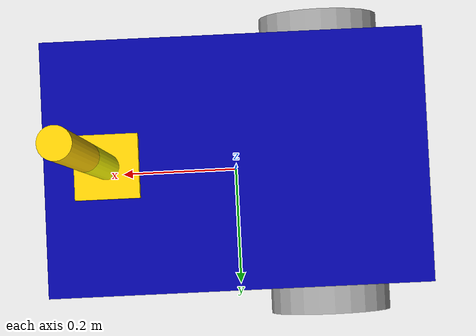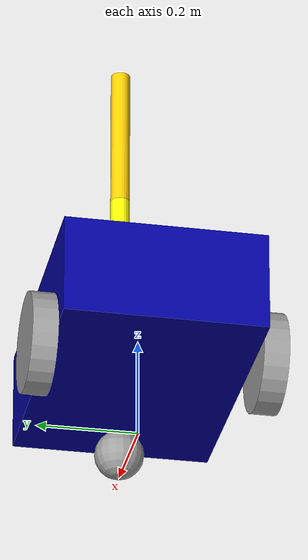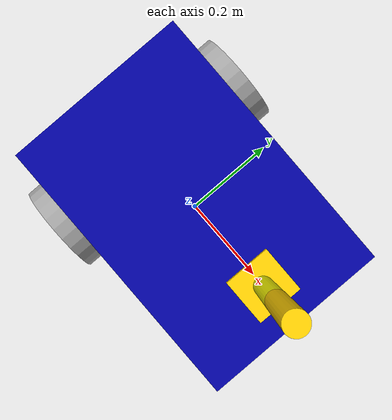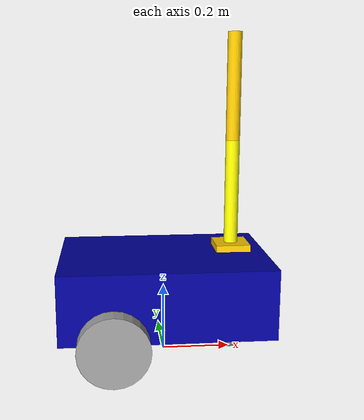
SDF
<sdf version='1.9'>
  <model name='my_robot'>
    <link name='base_footprint'>
      <inertial>
        <pose>0.03778688524590164 0 0.1975409836065574 0 0 0</pose>
        <mass>6.0999999999999996</mass>
        <inertia>
          <ixx>0.1027839480874317</ixx>
          <ixy>0</ixy>
          <ixz>0.002433196721311467</ixz>
          <iyy>0.22662740437158471</iyy>
          <iyz>0</iyz>
          <izz>0.25867678961748641</izz>
        </inertia>
      </inertial>
      <collision name='base_footprint_fixed_joint_lump__base_link_collision'>
        <pose>0 0 0.2 0 0 0</pose>
        <geometry>
          <box>
            <size>0.6 0.4 0.2</size>
          </box>
        </geometry>
      </collision>
      <collision name='base_footprint_fixed_joint_lump__arm_base_link_collision_1'>
        <pose>0.2 0 0.3200000000000001 0 0 0</pose>
        <geometry>
          <box>
            <size>0.1 0.1 0.02</size>
          </box>
        </geometry>
      </collision>
      <collision name='base_footprint_fixed_joint_lump__camera_link_collision_2'>
        <pose>0.305 0 0.2 0 0 0</pose>
        <geometry>
          <box>
            <size>0.01 0.1 0.05</size>
          </box>
        </geometry>
        <surface>
          <contact>
            <ode/>
          </contact>
          <friction>
            <ode/>
          </friction>
        </surface>
      </collision>
      <collision name='base_footprint_fixed_joint_lump__sphere_collision_3'>
        <pose>0.2 0 0.05 0 0 0</pose>
        <geometry>
          <sphere>
            <radius>0.050000000000000003</radius>
          </sphere>
        </geometry>
        <surface>
          <contact>
            <ode/>
          </contact>
          <friction>
            <ode>
              <mu>0.10000000000000001</mu>
              <mu2>0.10000000000000001</mu2>
            </ode>
          </friction>
        </surface>
      </collision>
      <visual name='base_footprint_fixed_joint_lump__base_link_visual'>
        <pose>0 0 0.2 0 0 0</pose>
        <geometry>
          <box>
            <size>0.6 0.4 0.2</size>
          </box>
        </geometry>
        <material>
          <diffuse>0 0 0.625 1</diffuse>
          <ambient>0 0 0.625 1</ambient>
        </material>
      </visual>
      <visual name='base_footprint_fixed_joint_lump__arm_base_link_visual_1'>
        <pose>0.2 0 0.3200000000000001 0 0 0</pose>
        <geometry>
          <box>
            <size>0.1 0.1 0.02</size>
          </box>
        </geometry>
        <material>
          <diffuse>1 0.80875 0 1</diffuse>
          <ambient>1 0.80875 0 1</ambient>
        </material>
      </visual>
      <visual name='base_footprint_fixed_joint_lump__camera_link_visual_2'>
        <pose>0.305 0 0.2 0 0 0</pose>
        <geometry>
          <box>
            <size>0.01 0.1 0.05</size>
          </box>
        </geometry>
        <material>
          <diffuse>0.625 0.625 0.625 1</diffuse>
          <ambient>0.625 0.625 0.625 1</ambient>
        </material>
      </visual>
      <visual name='base_footprint_fixed_joint_lump__sphere_visual_3'>
        <pose>0.2 0 0.05 0 0 0</pose>
        <geometry>
          <sphere>
            <radius>0.050000000000000003</radius>
          </sphere>
        </geometry>
        <material>
          <diffuse>0.625 0.625 0.625 1</diffuse>
          <ambient>0.625 0.625 0.625 1</ambient>
        </material>
      </visual>
      <sensor name='camera' type='camera'>
        <camera>
          <image>
            <width>640</width>
            <height>480</height>
            <format>R8G8B8</format>
          </image>
          <clip>
            <near>0.10000000000000001</near>
            <far>15</far>
          </clip>
          <noise>
            <type>gaussian</type>
            <mean>0</mean>
            <stddev>0.0070000000000000001</stddev>
          </noise>
          <optical_frame_id>camera_link_optical</optical_frame_id>
          <camera_info_topic>camera/camera_info</camera_info_topic>
          <horisontal_fov>1.3962634</horisontal_fov>
          <horizontal_fov>1.0469999999999999</horizontal_fov>
        </camera>
        <always_on>true</always_on>
        <update_rate>20</update_rate>
        <visualize>true</visualize>
        <topic>camera/image_raw</topic>
        <pose>0.305 0 0.2 0 -0 0</pose>
      </sensor>
    </link>
    <joint name='arm_base_forearm_joint' type='revolute'>
      <pose relative_to='base_footprint'>0.2 0 0.33 0 0 0</pose>
      <parent>base_footprint</parent>
      <child>forearm_link</child>
      <axis>
        <xyz>0 1 0</xyz>
        <limit>
          <lower>0</lower>
          <upper>1.570796326794897</upper>
          <effort>100</effort>
          <velocity>100</velocity>
        </limit>
        <dynamics>
          <spring_reference>0</spring_reference>
          <spring_stiffness>0</spring_stiffness>
        </dynamics>
      </axis>
    </joint>
    <link name='forearm_link'>
      <pose relative_to='arm_base_forearm_joint'>0 0 0 0 0 0</pose>
      <inertial>
        <pose>0 0 0.15 0 0 0</pose>
        <mass>0.29999999999999999</mass>
        <inertia>
          <ixx>0.0022799999999999999</ixx>
          <ixy>0</ixy>
          <ixz>0</ixz>
          <iyy>0.0022799999999999999</iyy>
          <iyz>0</iyz>
          <izz>6.0000000000000002e-05</izz>
        </inertia>
      </inertial>
      <collision name='forearm_link_collision'>
        <pose>0 0 0.15 0 0 0</pose>
        <geometry>
          <cylinder>
            <length>0.29999999999999999</length>
            <radius>0.02</radius>
          </cylinder>
        </geometry>
      </collision>
      <visual name='forearm_link_visual'>
        <pose>0 0 0.15 0 0 0</pose>
        <geometry>
          <cylinder>
            <length>0.29999999999999999</length>
            <radius>0.02</radius>
          </cylinder>
        </geometry>
        <material>
          <diffuse>1 1 0 1</diffuse>
          <ambient>1 1 0 1</ambient>
        </material>
      </visual>
    </link>
    <joint name='forearm_hand_joint' type='revolute'>
      <pose relative_to='forearm_link'>0 0 0.3 0 0 0</pose>
      <parent>forearm_link</parent>
      <child>hand_link</child>
      <axis>
        <xyz>0 1 0</xyz>
        <limit>
          <lower>0</lower>
          <upper>1.570796326794897</upper>
          <effort>100</effort>
          <velocity>100</velocity>
        </limit>
        <dynamics>
          <spring_reference>0</spring_reference>
          <spring_stiffness>0</spring_stiffness>
        </dynamics>
      </axis>
    </joint>
    <link name='hand_link'>
      <pose relative_to='forearm_hand_joint'>0 0 0 0 0 0</pose>
      <inertial>
        <pose>0 0 0.15 0 0 0</pose>
        <mass>0.29999999999999999</mass>
        <inertia>
          <ixx>0.0022799999999999999</ixx>
          <ixy>0</ixy>
          <ixz>0</ixz>
          <iyy>0.0022799999999999999</iyy>
          <iyz>0</iyz>
          <izz>6.0000000000000002e-05</izz>
        </inertia>
      </inertial>
      <collision name='hand_link_collision'>
        <pose>0 0 0.15 0 0 0</pose>
        <geometry>
          <cylinder>
            <length>0.29999999999999999</length>
            <radius>0.02</radius>
          </cylinder>
        </geometry>
      </collision>
      <visual name='hand_link_visual'>
        <pose>0 0 0.15 0 0 0</pose>
        <geometry>
          <cylinder>
            <length>0.29999999999999999</length>
            <radius>0.02</radius>
          </cylinder>
        </geometry>
        <material>
          <diffuse>1 0.80875 0 1</diffuse>
          <ambient>1 0.80875 0 1</ambient>
        </material>
      </visual>
    </link>
    <joint name='base_left_wheel' type='revolute'>
      <pose relative_to='base_footprint'>-0.15 -0.225 0.1 0 0 0</pose>
      <parent>base_footprint</parent>
      <child>left_wheel</child>
      <axis>
        <xyz>0 1 0</xyz>
        <limit>
          <lower>-10000000000000000</lower>
          <upper>10000000000000000</upper>
        </limit>
        <dynamics>
          <spring_reference>0</spring_reference>
          <spring_stiffness>0</spring_stiffness>
        </dynamics>
      </axis>
    </joint>
    <link name='left_wheel'>
      <pose relative_to='base_left_wheel'>0 0 0 0 0 0</pose>
      <inertial>
        <pose>0 0 0 1.570796326794896 0 0</pose>
        <mass>1</mass>
        <inertia>
          <ixx>0.0027083333333333339</ixx>
          <ixy>0</ixy>
          <ixz>0</ixz>
          <iyy>0.0027083333333333339</iyy>
          <iyz>0</iyz>
          <izz>0.005000000000000001</izz>
        </inertia>
      </inertial>
      <collision name='left_wheel_collision'>
        <pose>0 0 0 0 0 0</pose>
        <geometry>
          <sphere>
            <radius>0.10000000000000001</radius>
          </sphere>
        </geometry>
      </collision>
      <visual name='left_wheel_visual'>
        <pose>0 0 0 1.570796326794896 0 0</pose>
        <geometry>
          <cylinder>
            <length>0.050000000000000003</length>
            <radius>0.10000000000000001</radius>
          </cylinder>
        </geometry>
        <material>
          <diffuse>0.625 0.625 0.625 1</diffuse>
          <ambient>0.625 0.625 0.625 1</ambient>
        </material>
      </visual>
    </link>
    <joint name='base_right_wheel' type='revolute'>
      <pose relative_to='base_footprint'>-0.15 0.225 0.1 0 0 0</pose>
      <parent>base_footprint</parent>
      <child>right_wheel</child>
      <axis>
        <xyz>0 1 0</xyz>
        <limit>
          <lower>-10000000000000000</lower>
          <upper>10000000000000000</upper>
        </limit>
        <dynamics>
          <spring_reference>0</spring_reference>
          <spring_stiffness>0</spring_stiffness>
        </dynamics>
      </axis>
    </joint>
    <link name='right_wheel'>
      <pose relative_to='base_right_wheel'>0 0 0 0 0 0</pose>
      <inertial>
        <pose>0 0 0 1.570796326794896 0 0</pose>
        <mass>1</mass>
        <inertia>
          <ixx>0.0027083333333333339</ixx>
          <ixy>0</ixy>
          <ixz>0</ixz>
          <iyy>0.0027083333333333339</iyy>
          <iyz>0</iyz>
          <izz>0.005000000000000001</izz>
        </inertia>
      </inertial>
      <collision name='right_wheel_collision'>
        <pose>0 0 0 0 0 0</pose>
        <geometry>
          <sphere>
            <radius>0.10000000000000001</radius>
          </sphere>
        </geometry>
      </collision>
      <visual name='right_wheel_visual'>
        <pose>0 0 0 1.570796326794896 0 0</pose>
        <geometry>
          <cylinder>
            <length>0.050000000000000003</length>
            <radius>0.10000000000000001</radius>
          </cylinder>
        </geometry>
        <material>
          <diffuse>0.625 0.625 0.625 1</diffuse>
          <ambient>0.625 0.625 0.625 1</ambient>
        </material>
      </visual>
    </link>
    <plugin name='gz::sim::systems::DiffDrive' filename='gz-sim-diff-drive-system'>
      <left_joint>base_left_wheel</left_joint>
      <right_joint>base_right_wheel</right_joint>
      <wheel_separation>0.45</wheel_separation>
      <wheel_radius>0.1</wheel_radius>
      <frame_id>odom</frame_id>
      <child_frame_id>base_footprint</child_frame_id>
    </plugin>
    <plugin name='gz::sim::systems::JointStatePublisher' filename='gz-sim-joint-state-publisher-system'>
      <joint_name>base_left_wheel</joint_name>
      <joint_name>base_right_wheel</joint_name>
    </plugin>
    <plugin name='gz::sim::systems::JointPositionController' filename='gz-sim-joint-position-controller-system'>
      <joint_name>arm_base_forearm_joint</joint_name>
      <topic>/model/my_robot/joint/arm_base_forearm_joint/cmd_pos</topic>
      <p_gain>20.0</p_gain>
      <d_gain>0.5</d_gain>
    </plugin>
    <plugin name='gz::sim::systems::JointPositionController' filename='gz-sim-joint-position-controller-system'>
      <joint_name>forearm_hand_joint</joint_name>
      <topic>/model/my_robot/joint/forearm_hand_joint/cmd_pos</topic>
      <p_gain>15.0</p_gain>
      <d_gain>0.5</d_gain>
    </plugin>
    <plugin name='gz::sim::systems::JointStatePublisher' filename='gz-sim-joint-state-publisher-system'>
      <joint_name>arm_base_forearm_joint</joint_name>
      <joint_name>forearm_hand_joint</joint_name>
    </plugin>
    <frame name='base_arm_base_joint' attached_to='base_link'>
      <pose>0.2 0 0.21 0 -0 0</pose>
    </frame>
    <frame name='arm_base_link' attached_to='base_arm_base_joint'/>
    <frame name='camera_optical_joint' attached_to='camera_link'>
      <pose>0 0 0 -1.5708 -0 -1.5708</pose>
    </frame>
    <frame name='camera_link_optical' attached_to='camera_optical_joint'/>
    <frame name='base_camera_joint' attached_to='base_link'>
      <pose>0.305 0 0.1 0 -0 0</pose>
    </frame>
    <frame name='camera_link' attached_to='base_camera_joint'/>
    <frame name='base_sphere' attached_to='base_link'>
      <pose>0.2 0 -0.05 0 -0 0</pose>
    </frame>
    <frame name='sphere' attached_to='base_sphere'/>
    <frame name='base_joint' attached_to='base_footprint'>
      <pose>0 0 0.1 0 -0 0</pose>
    </frame>
    <frame name='base_link' attached_to='base_joint'/>
  </model>
</sdf>
